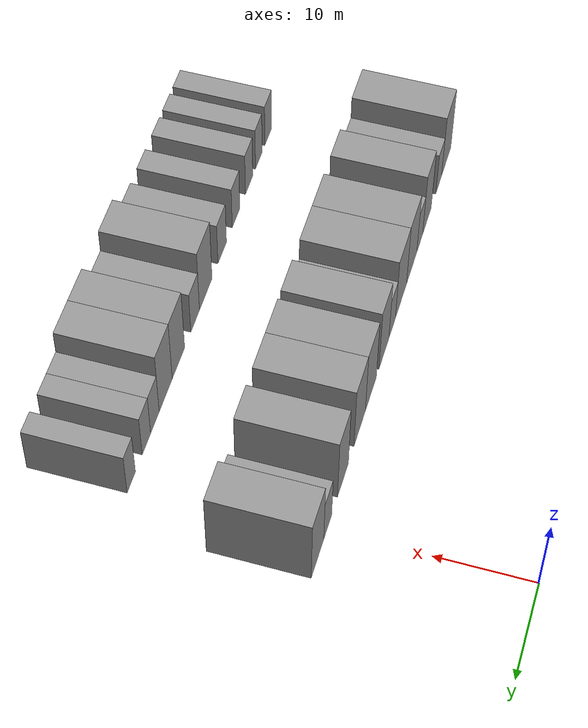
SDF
<sdf version="1.6">
 <world name="default">
  <model name="building_39">
   <static>1</static>
   <pose>25.0000 -46.6285 0 0.000000 0.000000 0.000000</pose>
   <link name="link">
    <pose>0 0 4.50 0 0 0</pose>
    <collision name="collision"><geometry><box><size>10.0000 4.1634 9.0000</size></box></geometry></collision>
    <visual name="visual">
     <cast_shadows>0</cast_shadows>
     <geometry><box><size>10.0000 4.1634 9.0000</size></box></geometry>
     <material>
      <script>
       <uri>model://grey_wall/materials/scripts</uri>
       <uri>model://grey_wall/materials/textures</uri>
       <name>vrc/grey_wall</name>
      </script>
     </material>
    </visual>
   </link>
  </model>
  <model name="building_40">
   <static>1</static>
   <pose>25.0000 -43.3054 0 0.000000 0.000000 0.000000</pose>
   <link name="link">
    <pose>0 0 3.00 0 0 0</pose>
    <collision name="collision"><geometry><box><size>10.0000 2.4829 6.0000</size></box></geometry></collision>
    <visual name="visual">
     <cast_shadows>0</cast_shadows>
     <geometry><box><size>10.0000 2.4829 6.0000</size></box></geometry>
     <material>
      <script>
       <uri>model://grey_wall/materials/scripts</uri>
       <uri>model://grey_wall/materials/textures</uri>
       <name>vrc/grey_wall</name>
      </script>
     </material>
    </visual>
   </link>
  </model>
  <model name="building_41">
   <static>1</static>
   <pose>25.0000 -38.2353 0 0.000000 0.000000 0.000000</pose>
   <link name="link">
    <pose>0 0 4.50 0 0 0</pose>
    <collision name="collision"><geometry><box><size>10.0000 3.6572 9.0000</size></box></geometry></collision>
    <visual name="visual">
     <cast_shadows>0</cast_shadows>
     <geometry><box><size>10.0000 3.6572 9.0000</size></box></geometry>
     <material>
      <script>
       <uri>model://grey_wall/materials/scripts</uri>
       <uri>model://grey_wall/materials/textures</uri>
       <name>vrc/grey_wall</name>
      </script>
     </material>
    </visual>
   </link>
  </model>
  <model name="building_42">
   <static>1</static>
   <pose>25.0000 -35.1828 0 0.000000 0.000000 0.000000</pose>
   <link name="link">
    <pose>0 0 3.00 0 0 0</pose>
    <collision name="collision"><geometry><box><size>10.0000 2.4476 6.0000</size></box></geometry></collision>
    <visual name="visual">
     <cast_shadows>0</cast_shadows>
     <geometry><box><size>10.0000 2.4476 6.0000</size></box></geometry>
     <material>
      <script>
       <uri>model://grey_wall/materials/scripts</uri>
       <uri>model://grey_wall/materials/textures</uri>
       <name>vrc/grey_wall</name>
      </script>
     </material>
    </visual>
   </link>
  </model>
  <model name="building_43">
   <static>1</static>
   <pose>25.0000 -31.8413 0 0.000000 0.000000 0.000000</pose>
   <link name="link">
    <pose>0 0 4.50 0 0 0</pose>
    <collision name="collision"><geometry><box><size>10.0000 4.2353 9.0000</size></box></geometry></collision>
    <visual name="visual">
     <cast_shadows>0</cast_shadows>
     <geometry><box><size>10.0000 4.2353 9.0000</size></box></geometry>
     <material>
      <script>
       <uri>model://grey_wall/materials/scripts</uri>
       <uri>model://grey_wall/materials/textures</uri>
       <name>vrc/grey_wall</name>
      </script>
     </material>
    </visual>
   </link>
  </model>
  <model name="building_44">
   <static>1</static>
   <pose>25.0000 -27.4893 0 0.000000 0.000000 0.000000</pose>
   <link name="link">
    <pose>0 0 4.50 0 0 0</pose>
    <collision name="collision"><geometry><box><size>10.0000 4.4687 9.0000</size></box></geometry></collision>
    <visual name="visual">
     <cast_shadows>0</cast_shadows>
     <geometry><box><size>10.0000 4.4687 9.0000</size></box></geometry>
     <material>
      <script>
       <uri>model://grey_wall/materials/scripts</uri>
       <uri>model://grey_wall/materials/textures</uri>
       <name>vrc/grey_wall</name>
      </script>
     </material>
    </visual>
   </link>
  </model>
  <model name="building_45">
   <static>1</static>
   <pose>25.0000 -23.9686 0 0.000000 0.000000 0.000000</pose>
   <link name="link">
    <pose>0 0 3.00 0 0 0</pose>
    <collision name="collision"><geometry><box><size>10.0000 2.5726 6.0000</size></box></geometry></collision>
    <visual name="visual">
     <cast_shadows>0</cast_shadows>
     <geometry><box><size>10.0000 2.5726 6.0000</size></box></geometry>
     <material>
      <script>
       <uri>model://grey_wall/materials/scripts</uri>
       <uri>model://grey_wall/materials/textures</uri>
       <name>vrc/grey_wall</name>
      </script>
     </material>
    </visual>
   </link>
  </model>
  <model name="building_46">
   <static>1</static>
   <pose>25.0000 -20.7558 0 0.000000 0.000000 0.000000</pose>
   <link name="link">
    <pose>0 0 4.50 0 0 0</pose>
    <collision name="collision"><geometry><box><size>10.0000 3.8530 9.0000</size></box></geometry></collision>
    <visual name="visual">
     <cast_shadows>0</cast_shadows>
     <geometry><box><size>10.0000 3.8530 9.0000</size></box></geometry>
     <material>
      <script>
       <uri>model://grey_wall/materials/scripts</uri>
       <uri>model://grey_wall/materials/textures</uri>
       <name>vrc/grey_wall</name>
      </script>
     </material>
    </visual>
   </link>
  </model>
  <model name="building_47">
   <static>1</static>
   <pose>25.0000 -15.7722 0 0.000000 0.000000 0.000000</pose>
   <link name="link">
    <pose>0 0 4.50 0 0 0</pose>
    <collision name="collision"><geometry><box><size>10.0000 4.1143 9.0000</size></box></geometry></collision>
    <visual name="visual">
     <cast_shadows>0</cast_shadows>
     <geometry><box><size>10.0000 4.1143 9.0000</size></box></geometry>
     <material>
      <script>
       <uri>model://grey_wall/materials/scripts</uri>
       <uri>model://grey_wall/materials/textures</uri>
       <name>vrc/grey_wall</name>
      </script>
     </material>
    </visual>
   </link>
  </model>
  <model name="building_48">
   <static>1</static>
   <pose>25.0000 -11.6120 0 0.000000 0.000000 0.000000</pose>
   <link name="link">
    <pose>0 0 4.50 0 0 0</pose>
    <collision name="collision"><geometry><box><size>10.0000 4.2062 9.0000</size></box></geometry></collision>
    <visual name="visual">
     <cast_shadows>0</cast_shadows>
     <geometry><box><size>10.0000 4.2062 9.0000</size></box></geometry>
     <material>
      <script>
       <uri>model://grey_wall/materials/scripts</uri>
       <uri>model://grey_wall/materials/textures</uri>
       <name>vrc/grey_wall</name>
      </script>
     </material>
    </visual>
   </link>
  </model>
  <model name="building_49">
   <static>1</static>
   <pose>25.0000 -5.5734 0 0.000000 0.000000 0.000000</pose>
   <link name="link">
    <pose>0 0 4.50 0 0 0</pose>
    <collision name="collision"><geometry><box><size>10.0000 3.8709 9.0000</size></box></geometry></collision>
    <visual name="visual">
     <cast_shadows>0</cast_shadows>
     <geometry><box><size>10.0000 3.8709 9.0000</size></box></geometry>
     <material>
      <script>
       <uri>model://grey_wall/materials/scripts</uri>
       <uri>model://grey_wall/materials/textures</uri>
       <name>vrc/grey_wall</name>
      </script>
     </material>
    </visual>
   </link>
  </model>
  <model name="building_50">
   <static>1</static>
   <pose>25.0000 -0.2710 0 0.000000 0.000000 0.000000</pose>
   <link name="link">
    <pose>0 0 3.00 0 0 0</pose>
    <collision name="collision"><geometry><box><size>10.0000 2.7340 6.0000</size></box></geometry></collision>
    <visual name="visual">
     <cast_shadows>0</cast_shadows>
     <geometry><box><size>10.0000 2.7340 6.0000</size></box></geometry>
     <material>
      <script>
       <uri>model://grey_wall/materials/scripts</uri>
       <uri>model://grey_wall/materials/textures</uri>
       <name>vrc/grey_wall</name>
      </script>
     </material>
    </visual>
   </link>
  </model>
  <model name="building_51">
   <static>1</static>
   <pose>25.0000 3.2166 0 0.000000 0.000000 0.000000</pose>
   <link name="link">
    <pose>0 0 4.50 0 0 0</pose>
    <collision name="collision"><geometry><box><size>10.0000 4.2412 9.0000</size></box></geometry></collision>
    <visual name="visual">
     <cast_shadows>0</cast_shadows>
     <geometry><box><size>10.0000 4.2412 9.0000</size></box></geometry>
     <material>
      <script>
       <uri>model://grey_wall/materials/scripts</uri>
       <uri>model://grey_wall/materials/textures</uri>
       <name>vrc/grey_wall</name>
      </script>
     </material>
    </visual>
   </link>
  </model>
  <model name="building_135">
   <static>1</static>
   <pose>44.0000 -44.6923 0 0.000000 0.000000 0.000000</pose>
   <link name="link">
    <pose>0 0 3.00 0 0 0</pose>
    <collision name="collision"><geometry><box><size>10.0000 2.5086 6.0000</size></box></geometry></collision>
    <visual name="visual">
     <cast_shadows>0</cast_shadows>
     <geometry><box><size>10.0000 2.5086 6.0000</size></box></geometry>
     <material>
      <script>
       <uri>model://grey_wall/materials/scripts</uri>
       <uri>model://grey_wall/materials/textures</uri>
       <name>vrc/grey_wall</name>
      </script>
     </material>
    </visual>
   </link>
  </model>
  <model name="building_136">
   <static>1</static>
   <pose>44.0000 -41.2274 0 0.000000 0.000000 0.000000</pose>
   <link name="link">
    <pose>0 0 3.00 0 0 0</pose>
    <collision name="collision"><geometry><box><size>10.0000 2.4212 6.0000</size></box></geometry></collision>
    <visual name="visual">
     <cast_shadows>0</cast_shadows>
     <geometry><box><size>10.0000 2.4212 6.0000</size></box></geometry>
     <material>
      <script>
       <uri>model://grey_wall/materials/scripts</uri>
       <uri>model://grey_wall/materials/textures</uri>
       <name>vrc/grey_wall</name>
      </script>
     </material>
    </visual>
   </link>
  </model>
  <model name="building_137">
   <static>1</static>
   <pose>44.0000 -37.7191 0 0.000000 0.000000 0.000000</pose>
   <link name="link">
    <pose>0 0 3.00 0 0 0</pose>
    <collision name="collision"><geometry><box><size>10.0000 2.5956 6.0000</size></box></geometry></collision>
    <visual name="visual">
     <cast_shadows>0</cast_shadows>
     <geometry><box><size>10.0000 2.5956 6.0000</size></box></geometry>
     <material>
      <script>
       <uri>model://grey_wall/materials/scripts</uri>
       <uri>model://grey_wall/materials/textures</uri>
       <name>vrc/grey_wall</name>
      </script>
     </material>
    </visual>
   </link>
  </model>
  <model name="building_138">
   <static>1</static>
   <pose>44.0000 -33.0919 0 0.000000 0.000000 0.000000</pose>
   <link name="link">
    <pose>0 0 3.00 0 0 0</pose>
    <collision name="collision"><geometry><box><size>10.0000 2.6587 6.0000</size></box></geometry></collision>
    <visual name="visual">
     <cast_shadows>0</cast_shadows>
     <geometry><box><size>10.0000 2.6587 6.0000</size></box></geometry>
     <material>
      <script>
       <uri>model://grey_wall/materials/scripts</uri>
       <uri>model://grey_wall/materials/textures</uri>
       <name>vrc/grey_wall</name>
      </script>
     </material>
    </visual>
   </link>
  </model>
  <model name="building_139">
   <static>1</static>
   <pose>44.0000 -28.3121 0 0.000000 0.000000 0.000000</pose>
   <link name="link">
    <pose>0 0 3.00 0 0 0</pose>
    <collision name="collision"><geometry><box><size>10.0000 2.9008 6.0000</size></box></geometry></collision>
    <visual name="visual">
     <cast_shadows>0</cast_shadows>
     <geometry><box><size>10.0000 2.9008 6.0000</size></box></geometry>
     <material>
      <script>
       <uri>model://grey_wall/materials/scripts</uri>
       <uri>model://grey_wall/materials/textures</uri>
       <name>vrc/grey_wall</name>
      </script>
     </material>
    </visual>
   </link>
  </model>
  <model name="building_140">
   <static>1</static>
   <pose>44.0000 -22.7869 0 0.000000 0.000000 0.000000</pose>
   <link name="link">
    <pose>0 0 4.50 0 0 0</pose>
    <collision name="collision"><geometry><box><size>10.0000 4.1496 9.0000</size></box></geometry></collision>
    <visual name="visual">
     <cast_shadows>0</cast_shadows>
     <geometry><box><size>10.0000 4.1496 9.0000</size></box></geometry>
     <material>
      <script>
       <uri>model://grey_wall/materials/scripts</uri>
       <uri>model://grey_wall/materials/textures</uri>
       <name>vrc/grey_wall</name>
      </script>
     </material>
    </visual>
   </link>
  </model>
  <model name="building_141">
   <static>1</static>
   <pose>44.0000 -19.3143 0 0.000000 0.000000 0.000000</pose>
   <link name="link">
    <pose>0 0 3.00 0 0 0</pose>
    <collision name="collision"><geometry><box><size>10.0000 2.7956 6.0000</size></box></geometry></collision>
    <visual name="visual">
     <cast_shadows>0</cast_shadows>
     <geometry><box><size>10.0000 2.7956 6.0000</size></box></geometry>
     <material>
      <script>
       <uri>model://grey_wall/materials/scripts</uri>
       <uri>model://grey_wall/materials/textures</uri>
       <name>vrc/grey_wall</name>
      </script>
     </material>
    </visual>
   </link>
  </model>
  <model name="building_142">
   <static>1</static>
   <pose>44.0000 -13.9696 0 0.000000 0.000000 0.000000</pose>
   <link name="link">
    <pose>0 0 4.50 0 0 0</pose>
    <collision name="collision"><geometry><box><size>10.0000 3.8938 9.0000</size></box></geometry></collision>
    <visual name="visual">
     <cast_shadows>0</cast_shadows>
     <geometry><box><size>10.0000 3.8938 9.0000</size></box></geometry>
     <material>
      <script>
       <uri>model://grey_wall/materials/scripts</uri>
       <uri>model://grey_wall/materials/textures</uri>
       <name>vrc/grey_wall</name>
      </script>
     </material>
    </visual>
   </link>
  </model>
  <model name="building_143">
   <static>1</static>
   <pose>44.0000 -10.0180 0 0.000000 0.000000 0.000000</pose>
   <link name="link">
    <pose>0 0 4.50 0 0 0</pose>
    <collision name="collision"><geometry><box><size>10.0000 4.0095 9.0000</size></box></geometry></collision>
    <visual name="visual">
     <cast_shadows>0</cast_shadows>
     <geometry><box><size>10.0000 4.0095 9.0000</size></box></geometry>
     <material>
      <script>
       <uri>model://grey_wall/materials/scripts</uri>
       <uri>model://grey_wall/materials/textures</uri>
       <name>vrc/grey_wall</name>
      </script>
     </material>
    </visual>
   </link>
  </model>
  <model name="building_144">
   <static>1</static>
   <pose>44.0000 -6.7232 0 0.000000 0.000000 0.000000</pose>
   <link name="link">
    <pose>0 0 3.00 0 0 0</pose>
    <collision name="collision"><geometry><box><size>10.0000 2.5800 6.0000</size></box></geometry></collision>
    <visual name="visual">
     <cast_shadows>0</cast_shadows>
     <geometry><box><size>10.0000 2.5800 6.0000</size></box></geometry>
     <material>
      <script>
       <uri>model://grey_wall/materials/scripts</uri>
       <uri>model://grey_wall/materials/textures</uri>
       <name>vrc/grey_wall</name>
      </script>
     </material>
    </visual>
   </link>
  </model>
  <model name="building_145">
   <static>1</static>
   <pose>44.0000 -4.1764 0 0.000000 0.000000 0.000000</pose>
   <link name="link">
    <pose>0 0 3.00 0 0 0</pose>
    <collision name="collision"><geometry><box><size>10.0000 2.5137 6.0000</size></box></geometry></collision>
    <visual name="visual">
     <cast_shadows>0</cast_shadows>
     <geometry><box><size>10.0000 2.5137 6.0000</size></box></geometry>
     <material>
      <script>
       <uri>model://grey_wall/materials/scripts</uri>
       <uri>model://grey_wall/materials/textures</uri>
       <name>vrc/grey_wall</name>
      </script>
     </material>
    </visual>
   </link>
  </model>
  <model name="building_146">
   <static>1</static>
   <pose>44.0000 0.2824 0 0.000000 0.000000 0.000000</pose>
   <link name="link">
    <pose>0 0 3.00 0 0 0</pose>
    <collision name="collision"><geometry><box><size>10.0000 2.4039 6.0000</size></box></geometry></collision>
    <visual name="visual">
     <cast_shadows>0</cast_shadows>
     <geometry><box><size>10.0000 2.4039 6.0000</size></box></geometry>
     <material>
      <script>
       <uri>model://grey_wall/materials/scripts</uri>
       <uri>model://grey_wall/materials/textures</uri>
       <name>vrc/grey_wall</name>
      </script>
     </material>
    </visual>
   </link>
  </model>
 </world>
</sdf>
